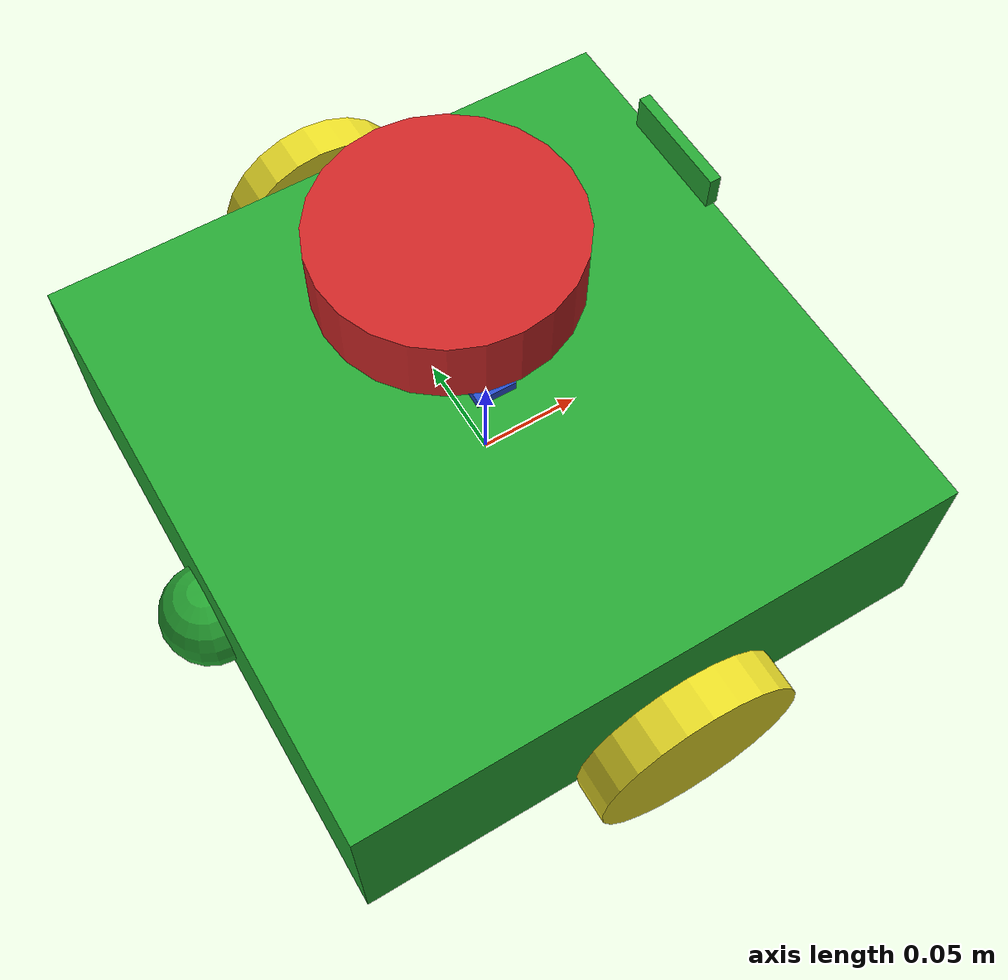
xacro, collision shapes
<?xml version='1.0'?>

<robot name="tortabot" xmlns:xacro="http://www.ros.org/wiki/xacro">

    <xacro:include filename="$(find tortasim_description)/urdf/materials.xacro"/>
    <xacro:include filename="$(find tortasim_description)/urdf/tortabot.gazebo.xacro"/>

    <xacro:property name="cameraMass" value="0.1"/>

    <link name="base_footprint" />

    <joint name="base_footprint_joint" type="fixed">
        <parent link="base_footprint" />
        <child link="chassis" />
    </joint>

    <link name='chassis'>
      <pose>0 0 0.1 0 0 0</pose>

      <inertial>
        <mass value="5.0"/>
        <origin xyz="0.0 0 0.1" rpy=" 0 0 0"/>
        <inertia
            ixx="0.1" ixy="0" ixz="0"
            iyy="0.1" iyz="0"
            izz="0.1"
        />
      </inertial>

      <collision name='collision'>
        <geometry>
          <box size=".3 .3 .1"/>
        </geometry>
      </collision>

      <visual name='chassis_visual'>
        <origin xyz="0 0 -0.05" rpy=" 0 0 1.57"/>
        <geometry>
          <mesh filename="file://$(find tortasim_description)/meshes/torta_v1_1.dae" />

        </geometry>
      </visual>

      <collision name='caster_collision'>
        <origin xyz="-0.15 0 -0.025" rpy=" 0 0 0"/>
        <geometry>
          <sphere radius="0.025"/>
        </geometry>
      </collision>

      <visual name='caster_visual'>
        <origin xyz="-0.15 0 -0.025" rpy=" 0 0 0"/>
        <geometry>
          <sphere radius="0.025"/>
        </geometry>
        <material name="green">   </material>
      </visual>

      <collision name='caster_front_collision'>
        <origin xyz="0.15 0 -0.025" rpy=" 0 0 0"/>
        <geometry>
          <sphere radius="0.025"/>
        </geometry>
      </collision>

      <visual name='caster_front_visual'>
        <origin xyz="0.15 0 -0.025" rpy=" 0 0 0"/>
        <geometry>
          <sphere radius="0.025"/>
        </geometry>
        <material name="green">   </material>

      </visual>

    </link>

    <link name="left_wheel">
      <!--origin xyz="0.1 0.13 0.1" rpy="0 1.5707 1.5707"/-->
      <collision name="collision">
        <origin xyz="0 0 0" rpy="0 1.5707 1.5707"/>
        <geometry>
          <cylinder radius="0.05" length="0.02"/>
        </geometry>
      </collision>
      <visual name="left_wheel_visual">
        <origin xyz="0 0 0" rpy="0 1.5707 1.5707"/>
        <geometry>
          <cylinder radius="0.05" length="0.02"/>
        </geometry>
        <material name="yellow"/>
      </visual>
      <inertial>
        <origin xyz="0 0 0" rpy="0 1.5707 1.5707"/>
        <mass value="5"/>
        <inertia
          ixx=".1" ixy="0.0" ixz="0.0"
          iyy=".1" iyz="0.0"
          izz=".1"/>
      </inertial>
    </link>

    <link name="right_wheel">
      <!--origin xyz="0.1 -0.13 0.1" rpy="0 1.5707 1.5707"/-->
      <collision name="collision">
        <origin xyz="0 0 0" rpy="0 1.5707 1.5707"/>
        <geometry>
          <cylinder radius="0.05" length="0.02"/>
        </geometry>
      </collision>
      <visual name="right_wheel_visual">
        <origin xyz="0 0 0" rpy="0 1.5707 1.5707"/>
        <geometry>
          <cylinder radius="0.05" length="0.02"/>
        </geometry>
        <material name="yellow"/>
      </visual>
      <inertial>
        <origin xyz="0 0 0" rpy="0 1.5707 1.5707"/>
        <mass value="5"/>
        <inertia
          ixx=".1" ixy="0.0" ixz="0.0"
          iyy=".1" iyz="0.0"
          izz=".1"/>
      </inertial>
    </link>

    <joint type="continuous" name="left_wheel_hinge">
      <origin xyz="0 0.17 0" rpy="0 0 0"/>
      <!--origin xyz="0.1 0.13 0" rpy="0 1.5707 1.5707"/-->
      <child link="left_wheel"/>
      <parent link="chassis"/>
      <axis xyz="0 1 0" rpy="0 0 0"/>
      <joint_properties damping="0.0" friction="0.0"/>
    </joint>

    <joint type="continuous" name="right_wheel_hinge">
      <origin xyz="0 -0.17 0" rpy="0 0 0"/>
      <!--origin xyz="0.1 -0.13 0" rpy="0 1.5707 1.5707"/-->
      <child link="right_wheel"/>
      <parent link="chassis"/>
      <axis xyz="0 1 0" rpy="0 0 0"/>
      <joint_properties damping="0.0" friction="0.0"/>
    </joint>

    <!-- Camera -->
    <link name="stereo_camera_link">
      <collision>
        <origin xyz="0 0 0" rpy="0 0 0"/>
        <geometry>
          <box size="0.005 0.05 0.015"/>
        </geometry>
      </collision>

      <visual>
        <origin xyz="0 0 0" rpy="0 0 0"/>
        <geometry>
          <box size="0.005 0.05 0.015"/>
        </geometry>
        <material name="green"/>
      </visual>

      <inertial>
        <mass value="${cameraMass}" />
        <origin xyz="0 0 0" rpy="0 0 0"/>
        <box_inertia m="${cameraMass}" x="0.005" y="0.05" z="0.015" />
        <inertia ixx="1e-6" ixy="0" ixz="0" iyy="1e-6" iyz="0" izz="1e-6" />
      </inertial>
    </link>

    <joint name="camera_joint" type="fixed">
      <axis xyz="0 1 0" />
      <origin xyz=".09 0 0.16" rpy="0 0 0"/>
      <parent link="chassis"/>
      <child link="stereo_camera_link"/>
    </joint>

    <!-- IMU -->
    <link name="imu_link">
      <collision>
        <origin xyz="0 0 0" rpy="0 0 0"/>
        <geometry>
          <box size="0.02 0.02 0.005"/>
        </geometry>
      </collision>

      <visual>
        <origin xyz="0 0 0" rpy="0 0 0"/>
        <geometry>
          <box size="0.02 0.02 0.005"/>
        </geometry>
        <material name="Blue"/>
      </visual>

      <inertial>
        <mass value="0.05" />
        <origin xyz="0 0 0" rpy="0 0 0"/>
        <box_inertia m="0.05" x="0.005" y="0.05" z="0.015" />
        <inertia ixx="1e-6" ixy="0" ixz="0" iyy="1e-6" iyz="0" izz="1e-6" />
      </inertial>
    </link>

    <joint name="scan_joint" type="fixed">
      <parent link="chassis"/>
      <child link="base_scan"/>
      <origin xyz="-0.032 0 0.172" rpy="0 0 0"/>
    </joint>

    <link name="base_scan">
      <visual>
        <origin xyz="0 0 0.0" rpy="0 0 0"/>
        <geometry>
          <cylinder length="0.0315" radius="0.055"/>
        </geometry>
        <material name="red"/>
      </visual>

      <collision>
        <origin xyz="0.015 0 -0.0065" rpy="0 0 0"/>
        <geometry>
          <cylinder length="0.0315" radius="0.055"/>
        </geometry>
      </collision>

      <inertial>
        <mass value="0.114" />
        <origin xyz="0 0 0" />
        <inertia ixx="0.001" ixy="0.0" ixz="0.0"
                 iyy="0.001" iyz="0.0"
                 izz="0.001" />
      </inertial>
    </link>

    <joint name="IMU_joint" type="fixed">
      <origin xyz="0 0 0.06" rpy="0 0 0"/>
      <parent link="chassis"/>
      <child link="imu_link"/>
    </joint>

</robot>
